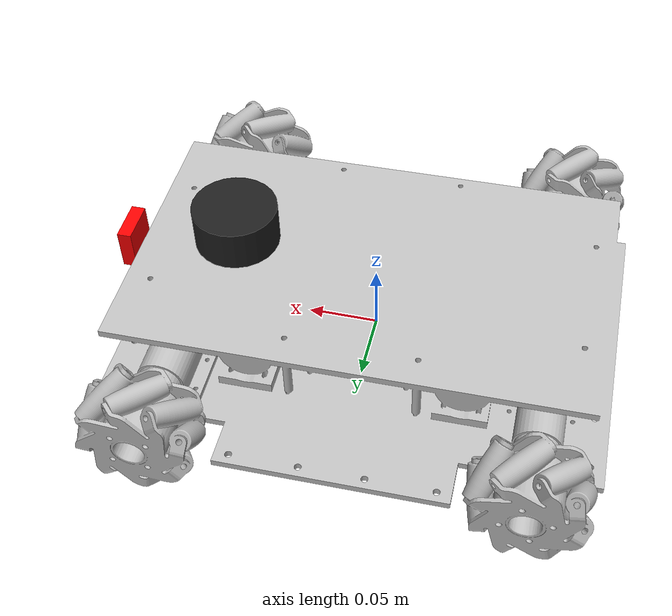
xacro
<?xml version="1.0" encoding="utf-8"?>

<robot
  name="agv">
  <link
    name="base_link">
    <inertial>
      <origin
        xyz="0.000468833767889643 -0.000147070915307079 0.0245551878589533"
        rpy="0 0 0" />
      <mass
        value="1.32574871847275" />
      <inertia
        ixx="0.00383366685628088"
        ixy="4.57369306076719E-09"
        ixz="-4.46205047899959E-11"
        iyy="0.00723347203171326"
        iyz="8.05429136537219E-11"
        izz="0.010973378938603" />
    </inertial>
    <visual>
      <origin
        xyz="0 0 0"
        rpy="0 0 0" />
      <geometry>
        <mesh
          filename="package://agv_description/meshes/base_link.STL" />
      </geometry>
      <material
        name="">
        <color
          rgba="0.752941176470588 0.752941176470588 0.752941176470588 1" />
      </material>
    </visual>
    <collision>
      <origin
        xyz="0 0 0"
        rpy="0 0 0" />
      <geometry>
        <mesh
          filename="package://agv_description/meshes/base_link.STL" />
      </geometry>
    </collision>
  </link>
  <link
    name="Link1FL">
    <inertial>
      <origin
        xyz="3.79729197959033E-05 -2.99969885128593E-05 -0.00234763264934865"
        rpy="0 0 0" />
      <mass
        value="0.0132525434019224" />
      <inertia
        ixx="2.83938076409752E-05"
        ixy="1.09050136849466E-08"
        ixz="6.63605279587575E-08"
        iyy="2.83132317534887E-05"
        iyz="8.5161799895796E-09"
        izz="3.45594328512509E-05" />
    </inertial>
    <visual>
      <origin
        xyz="0 0 0"
        rpy="0 0 0" />
      <geometry>
        <mesh
          filename="package://agv_description/meshes/Link1FL.STL" />
      </geometry>
      <material
        name="">
        <color
          rgba="0.752941176470588 0.752941176470588 0.752941176470588 1" />
      </material>
    </visual>
    <collision>
      <origin
        xyz="0 0 0"
        rpy="0 0 0" />
      <geometry>
        <mesh
          filename="package://agv_description/meshes/Link1FL.STL" />
      </geometry>
    </collision>
  </link>
  <joint
    name="Joint1FL"
    type="continuous">
    <origin
      xyz="0.12846 0.1418 0.020104"
      rpy="-1.5708 0 0" />
    <parent
      link="base_link" />
    <child
      link="Link1FL" />
    <axis
      xyz="0 0 -1" />
    <limit
      lower="-1"
      upper="1"
      effort="1"
      velocity="1" />
  </joint>
  <link
    name="Link2BL">
    <inertial>
      <origin
        xyz="-4.38345463739387E-05 -2.05364503893801E-05 -0.00234769955182648"
        rpy="0 0 0" />
      <mass
        value="0.0132524888521794" />
      <inertia
        ixx="2.83203534828796E-05"
        ixy="2.55863050673323E-08"
        ixz="-2.20385166993087E-08"
        iyy="2.83862450924798E-05"
        iyz="-6.31923039302833E-08"
        izz="3.45595004509427E-05" />
    </inertial>
    <visual>
      <origin
        xyz="0 0 0"
        rpy="0 0 0" />
      <geometry>
        <mesh
          filename="package://agv_description/meshes/Link2BL.STL" />
      </geometry>
      <material
        name="">
        <color
          rgba="0.752941176470588 0.752941176470588 0.752941176470588 1" />
      </material>
    </visual>
    <collision>
      <origin
        xyz="0 0 0"
        rpy="0 0 0" />
      <geometry>
        <mesh
          filename="package://agv_description/meshes/Link2BL.STL" />
      </geometry>
    </collision>
  </link>
  <joint
    name="Joint2BL"
    type="continuous">
    <origin
      xyz="-0.1285 0.1418 0.020072"
      rpy="-1.5708 0 0" />
    <parent
      link="base_link" />
    <child
      link="Link2BL" />
    <axis
      xyz="0 0 -1" />
    <limit
      lower="-1"
      upper="1"
      effort="1"
      velocity="1" />
  </joint>
  <link
    name="Link3FR">
    <inertial>
      <origin
        xyz="2.36833282597493E-05 -4.21973955030686E-05 -0.00234770068144219"
        rpy="0 0 0" />
      <mass
        value="0.0132524526151854" />
      <inertia
        ixx="2.83896685862784E-05"
        ixy="-2.04596315352859E-08"
        ixz="6.46157505476869E-08"
        iyy="2.83168222733013E-05"
        iyz="-1.72129112635716E-08"
        izz="3.4559365543003E-05" />
    </inertial>
    <visual>
      <origin
        xyz="0 0 0"
        rpy="0 0 0" />
      <geometry>
        <mesh
          filename="package://agv_description/meshes/Link3FR.STL" />
      </geometry>
      <material
        name="">
        <color
          rgba="0.752941176470588 0.752941176470588 0.752941176470588 1" />
      </material>
    </visual>
    <collision>
      <origin
        xyz="0 0 0"
        rpy="0 0 0" />
      <geometry>
        <mesh
          filename="package://agv_description/meshes/Link3FR.STL" />
      </geometry>
    </collision>
  </link>
  <joint
    name="Joint3FR"
    type="continuous">
    <origin
      xyz="0.12846 -0.1428 0.020108"
      rpy="1.5708 0 0" />
    <parent
      link="base_link" />
    <child
      link="Link3FR" />
    <axis
      xyz="0 0 -1" />
    <limit
      lower="-1"
      upper="1"
      effort="1"
      velocity="1" />
  </joint>
  <link
    name="Link4FR">
    <inertial>
      <origin
        xyz="3.11343457370661E-05 3.71419400362061E-05 -0.00234766252759377"
        rpy="0 0 0" />
      <mass
        value="0.0132525065956852" />
      <inertia
        ixx="2.8312557032113E-05"
        ixy="-8.65612383638587E-09"
        ixz="-6.68606225811542E-09"
        iyy="2.83942952941758E-05"
        iyz="6.65539356200118E-08"
        izz="3.45593737164993E-05" />
    </inertial>
    <visual>
      <origin
        xyz="0 0 0"
        rpy="0 0 0" />
      <geometry>
        <mesh
          filename="package://agv_description/meshes/Link4FR.STL" />
      </geometry>
      <material
        name="">
        <color
          rgba="0.752941176470588 0.752941176470588 0.752941176470588 1" />
      </material>
    </visual>
    <collision>
      <origin
        xyz="0 0 0"
        rpy="0 0 0" />
      <geometry>
        <mesh
          filename="package://agv_description/meshes/Link4FR.STL" />
      </geometry>
    </collision>
  </link>
  <joint
    name="Joint4FR"
    type="continuous">
    <origin
      xyz="-0.12851 -0.1418 0.020071"
      rpy="1.5708 0 0" />
    <parent
      link="base_link" />
    <child
      link="Link4FR" />
    <axis
      xyz="0 0 -1" />
    <limit
      lower="-1"
      upper="1"
      effort="1"
      velocity="1" />
  </joint>

<link name="laser_link">
        <inertial>
            <mass value="0.1" />
            <origin xyz="0 0 0" />
            <inertia ixx="0.01" ixy="0.0" ixz="0.0"
                        iyy="0.01" iyz="0.0"
                        izz="0.01" />
        </inertial>

        <visual>
            <origin xyz=" 0 0 0 " rpy="0 0 0" />
            <geometry>
                <cylinder length="0.03" radius="0.03"/>
            </geometry>
            <material name="black"/>
        </visual>

        <collision>
            <origin xyz="0.0 0.0 0.0" rpy="0 0 0" />
            <geometry>
                <cylinder length="0.03" radius="0.03"/>
            </geometry>
        </collision>
    </link>

    <gazebo reference="laser_link">
        <material>Gazebo/Grey</material>
    </gazebo>

    <gazebo reference="laser_link">
        <sensor type="ray" name="rplidar">
            <pose>0 0 0 0 0 0</pose>
            <visualize>false</visualize>
            <update_rate>30</update_rate>
            <ray>
                <scan>
                    <horizontal>
                    <samples>360</samples>
                    <resolution>1</resolution>
                    <min_angle>-3.14</min_angle>
                    <max_angle>3.14</max_angle>
                    </horizontal>
                </scan>
                <range>
                    <min>0.10</min>
                    <max>30.0</max>
                    <resolution>0.01</resolution>
                </range>
                <noise>
                    <type>gaussian</type>
                    <mean>0.0</mean>
                    <stddev>0.01</stddev>
                </noise>
            </ray>
            <plugin name="gazebo_rplidar" filename="libgazebo_ros_laser.so">
                <topicName>/scan</topicName>
                <frameName>laser_link</frameName>
            </plugin>
        </sensor>
    </gazebo>

	<joint name="rplidar_joint" type="fixed">
		<origin xyz="0.10 0 0.08" rpy="0 0 0" />
		<parent link="base_link"/>
		<child link="laser_link"/>
	</joint>

  <!--camera-->

  <link name="camera_link">
    <collision>
      <origin xyz="0 0 0" rpy="0 0 0"/>
      <geometry>
	<box size="0.01 0.03 0.03"/>
      </geometry>
    </collision>

    <visual>
      <origin xyz="0 0 0" rpy="0 0 0"/>
      <geometry>
	<box size="0.01 0.03 0.03"/>
      </geometry>
      <material name="red">
	<color rgba="1 0 0 1"/>
      </material>
    </visual>

    <inertial>
      <mass value="1e-2" />
      <origin xyz="0 0 0" rpy="0 0 0"/>
      <inertia ixx="1e-6" ixy="0" ixz="0" iyy="1e-6" iyz="0" izz="1e-6" />
    </inertial>
  </link>

  <joint name="camera_joint" type="fixed">
    <axis xyz="0 1 0" />
    <origin xyz="0.18 0 0.05" rpy="0 0 0"/>
    <parent link="base_link"/>
    <child link="camera_link"/>
  </joint>

  <gazebo reference="camera_link">
      <sensor type="depth" name="camera">
          <always_on>true</always_on>
          <update_rate>20.0</update_rate>
          <camera>
              <horizontal_fov>1.047</horizontal_fov>
              <image>
                  <format>R8G8B8</format>
                  <width>640</width>
                  <height>480</height>
              </image>
              <clip>
                  <near>0.05</near>
                  <far>20.0</far>
              </clip>
          </camera>
          <plugin name="kinect_camera_controller" filename="libgazebo_ros_openni_kinect.so">
              <cameraName>camera</cameraName>
              <alwaysOn>true</alwaysOn>
              <updateRate>10</updateRate>
              <imageTopicName>rgb/image_raw</imageTopicName>
              <depthImageTopicName>depth/image_raw</depthImageTopicName>
              <pointCloudTopicName>depth/points</pointCloudTopicName>
              <cameraInfoTopicName>rgb/camera_info</cameraInfoTopicName>
              <depthImageCameraInfoTopicName>depth/camera_info</depthImageCameraInfoTopicName>
              <frameName>camera_frame_optical</frameName>
              <baseline>0.1</baseline>
              <distortion_k1>0.0</distortion_k1>
              <distortion_k2>0.0</distortion_k2>
              <distortion_k3>0.0</distortion_k3>
              <distortion_t1>0.0</distortion_t1>
              <distortion_t2>0.0</distortion_t2>
              <pointCloudCutoffMax> 5000 </pointCloudCutoffMax>
              <pointCloudCutoff>0.05</pointCloudCutoff>
          </plugin>
      </sensor>
  </gazebo>

    <gazebo>
      <plugin name="mbot_drive_controller" filename="libgazebo_ros_planar_move.so">
          <commandTopic>cmd_vel</commandTopic>
          <odometryTopic>odom</odometryTopic>
          <odometryFrame>odom</odometryFrame>
          <odometryRate>50</odometryRate>
          <robotBaseFrame>base_link</robotBaseFrame>
      </plugin>
    </gazebo>

    <gazebo reference="base_link">
        <material>Gazebo/Red</material>
    </gazebo>

    <gazebo reference="Link1FL">
        <material>Gazebo/Grey</material>
    </gazebo>
        <gazebo reference="Link2BL">
        <material>Gazebo/Grey</material>
    </gazebo>
        <gazebo reference="Link3FR">
        <material>Gazebo/Grey</material>
    </gazebo>
        <gazebo reference="Link4FR">
        <material>Gazebo/Grey</material>
    </gazebo>

    <gazebo reference="Lidar_Link5">
        <material>Gazebo/Grey</material>
    </gazebo>

</robot>
